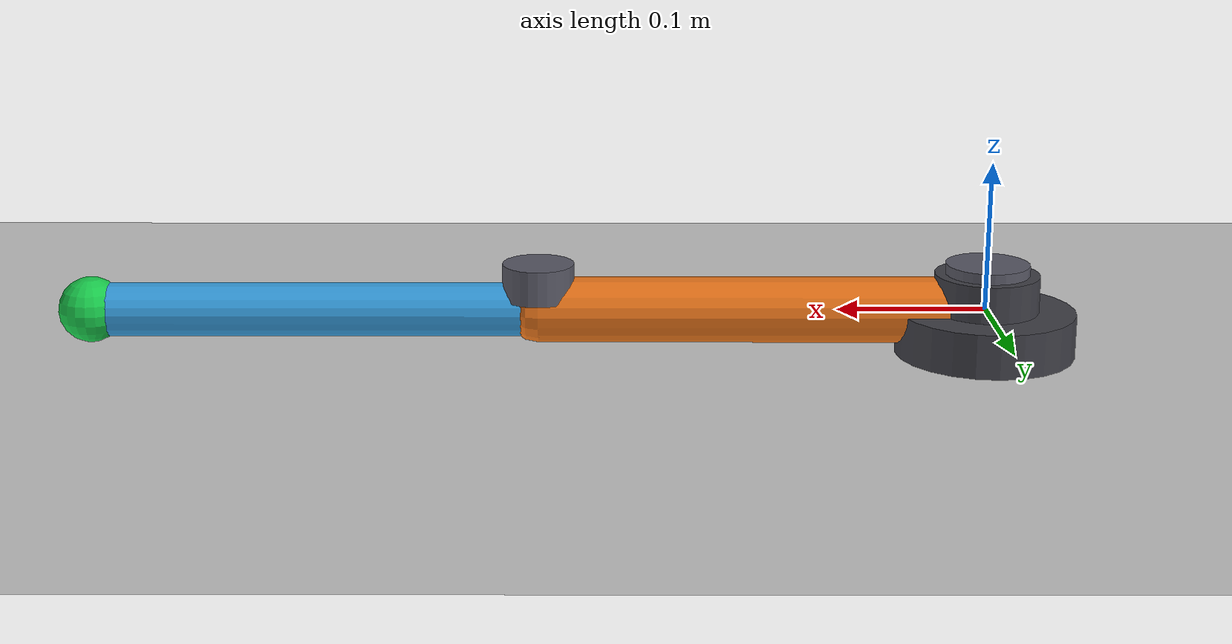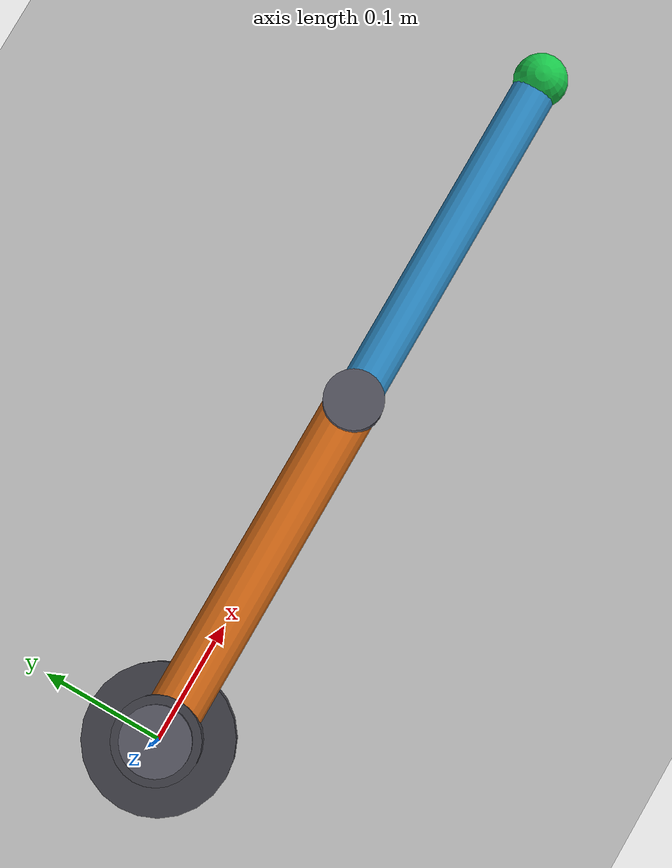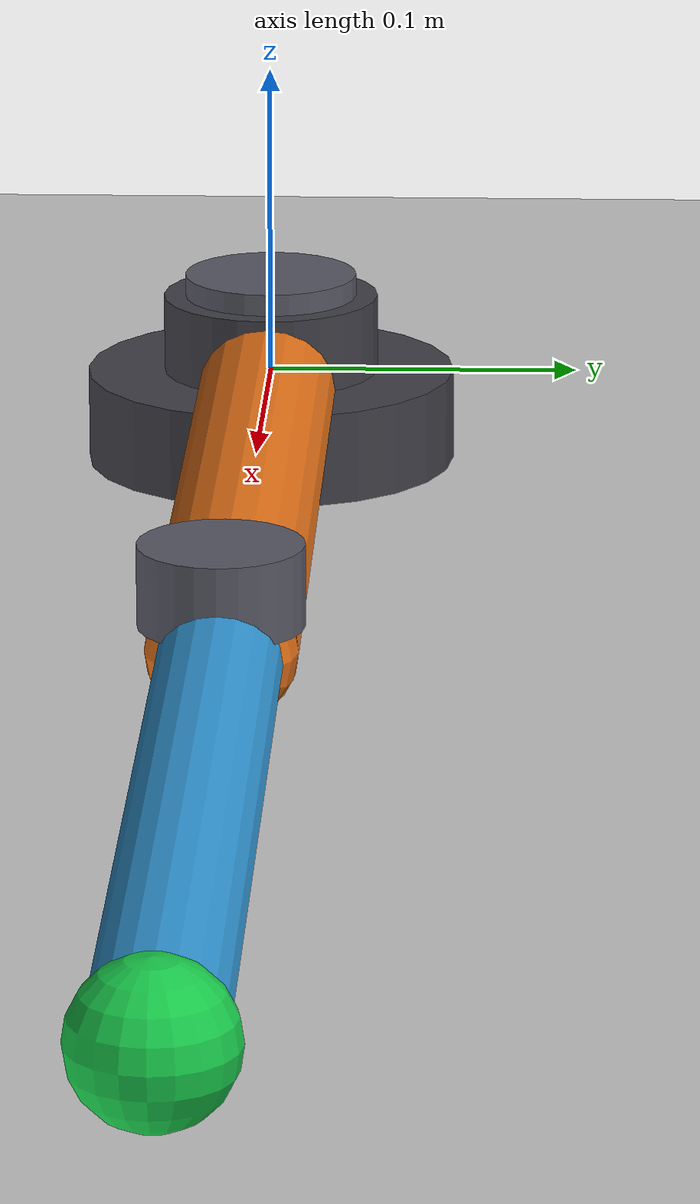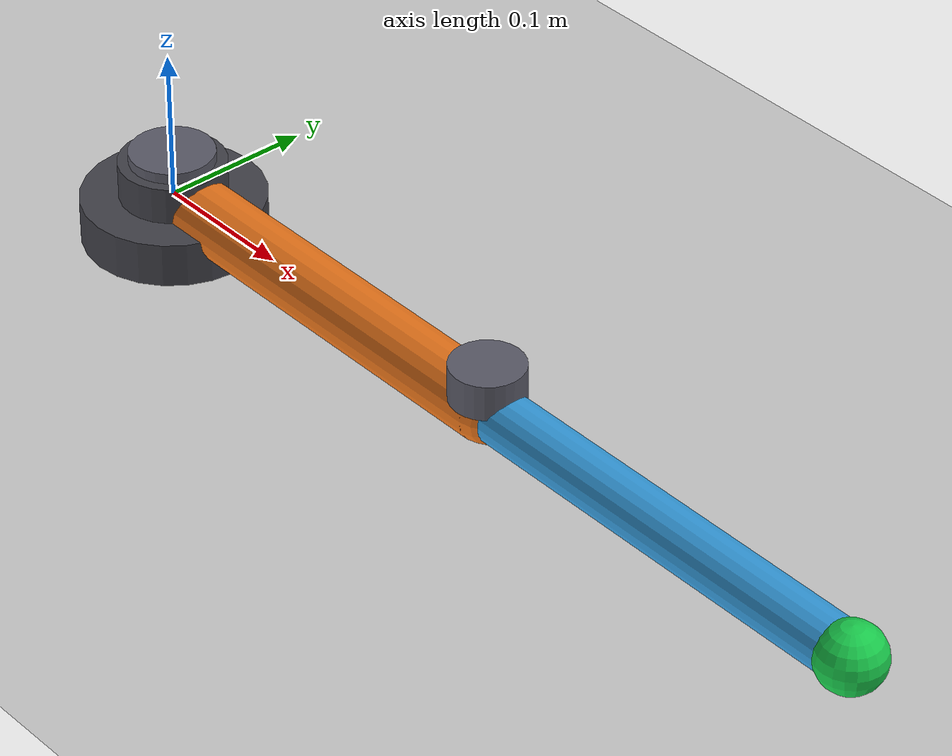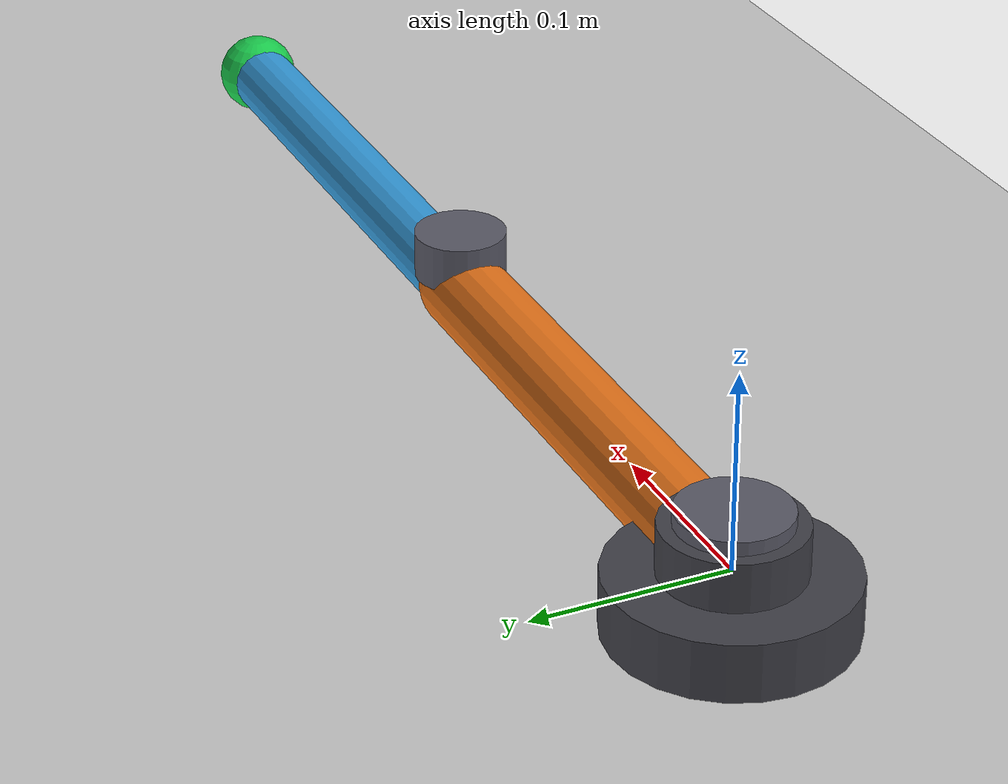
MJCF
<mujoco model="two_link_torque">
  <compiler angle="radian"/>
  <option gravity="0 0 0" timestep="0.002"/>

  <visual>
    <headlight ambient="0.3 0.3 0.3" diffuse="0.6 0.6 0.6"/>
    <quality shadowsize="2048"/>
    <map znear="0.01"/>
  </visual>

  <default>
    <joint damping="0.1" armature="0.01"/>
    <geom contype="1" conaffinity="1"/>
  </default>

  <asset>
    <texture name="grid" type="2d" builtin="checker" rgb1="0.85 0.85 0.85" rgb2="0.7 0.7 0.7" width="512" height="512"/>
    <material name="grid_mat" texture="grid" texrepeat="8 8" reflectance="0.1"/>
    <material name="base_mat" rgba="0.25 0.25 0.28 1" specular="0.6" shininess="0.8"/>
    <material name="link1_mat" rgba="0.9 0.45 0.1 1" specular="0.4" shininess="0.5"/>
    <material name="link2_mat" rgba="0.2 0.6 0.85 1" specular="0.4" shininess="0.5"/>
    <material name="joint_mat" rgba="0.35 0.35 0.4 1" specular="0.7" shininess="0.9"/>
    <material name="ee_mat" rgba="0.1 0.8 0.3 1" specular="0.5" shininess="0.6"/>
  </asset>

  <worldbody>
    <!-- Isiklandirma -->
    <light pos="0 -0.5 1.0" dir="0 0.3 -1" diffuse="0.9 0.9 0.9" specular="0.3 0.3 0.3"/>
    <light pos="0.5 0.5 0.8" dir="-0.3 -0.3 -1" diffuse="0.4 0.4 0.5"/>

    <!-- Zemin -->
    <geom name="floor" type="plane" size="1 1 0.01" pos="0 0 -0.03" material="grid_mat" contype="0" conaffinity="0"/>

    <!-- Base: masa uzerine montajli sabit platform -->
    <body name="base" pos="0 0 0">
      <!-- Base platform (silindir) -->
      <geom name="base_plate" type="cylinder" size="0.06 0.015" pos="0 0 -0.015" material="base_mat" mass="0"/>
      <!-- Base kolon -->
      <geom name="base_column" type="cylinder" size="0.035 0.02" pos="0 0 0.005" material="base_mat" mass="0"/>

      <!-- Link 1 -->
      <body name="link1" pos="0 0 0">
        <joint name="joint1" type="hinge" axis="0 0 1" range="-3.14 3.14"/>
        <!-- Joint 1 silindir (donus noktasi) -->
        <geom name="joint1_vis" type="cylinder" size="0.028 0.012" pos="0 0 0.02" material="joint_mat" mass="0.1"/>
        <!-- Link 1 govde -->
        <geom name="geom1" type="capsule" fromto="0 0 0  0.3 0 0" size="0.022" material="link1_mat" mass="1"/>

        <!-- Link 2 -->
        <body name="link2" pos="0.3 0 0">
          <joint name="joint2" type="hinge" axis="0 0 1" range="-3.14 3.14"/>
          <!-- Joint 2 silindir (donus noktasi) -->
          <geom name="joint2_vis" type="cylinder" size="0.024 0.012" pos="0 0 0.02" material="joint_mat" mass="0.1"/>
          <!-- Link 2 govde (biraz daha ince) -->
          <geom name="geom2" type="capsule" fromto="0 0 0  0.3 0 0" size="0.018" material="link2_mat" mass="0.7"/>

          <!-- End-effector -->
          <body name="ee_body" pos="0.3 0 0">
            <geom name="ee_sphere" type="sphere" size="0.022" material="ee_mat" mass="0.05"/>
            <site name="end_effector" pos="0.015 0 0" size="0.005" rgba="1 0 0 0.5"/>
          </body>
        </body>
      </body>
    </body>
  </worldbody>

  <actuator>
    <!-- motor: ctrl = dogrudan torque (N.m). Fizik simule eder. -->
    <motor name="torque1" joint="joint1" ctrlrange="-5 5"/>
    <motor name="torque2" joint="joint2" ctrlrange="-5 5"/>
  </actuator>

  <sensor>
    <jointpos name="pos_joint1" joint="joint1"/>
    <jointpos name="pos_joint2" joint="joint2"/>
    <jointvel name="vel_joint1" joint="joint1"/>
    <jointvel name="vel_joint2" joint="joint2"/>
    <actuatorfrc name="frc1" actuator="torque1"/>
    <actuatorfrc name="frc2" actuator="torque2"/>
  </sensor>
</mujoco>
